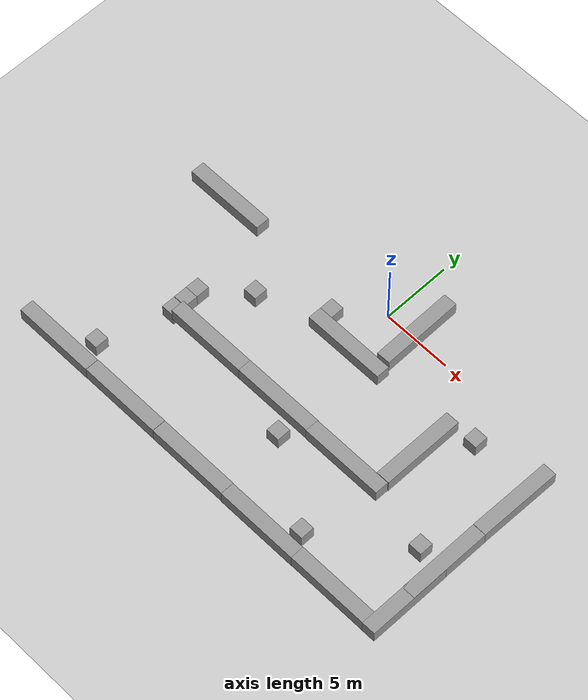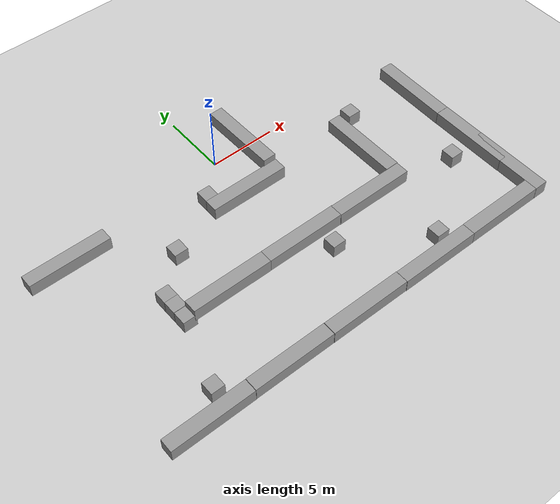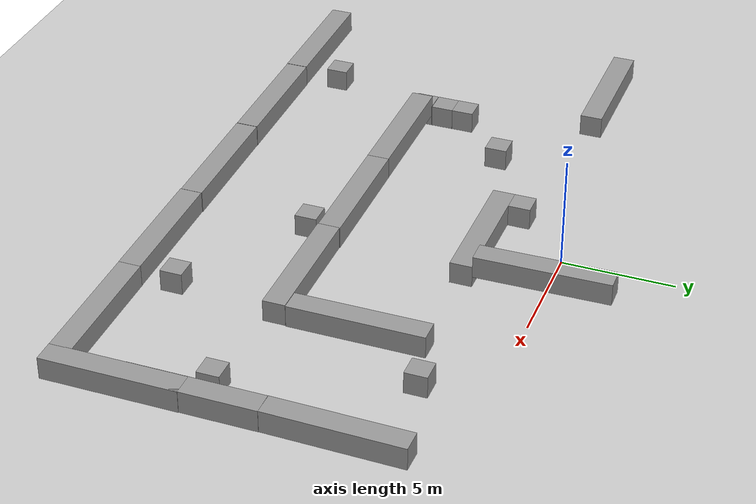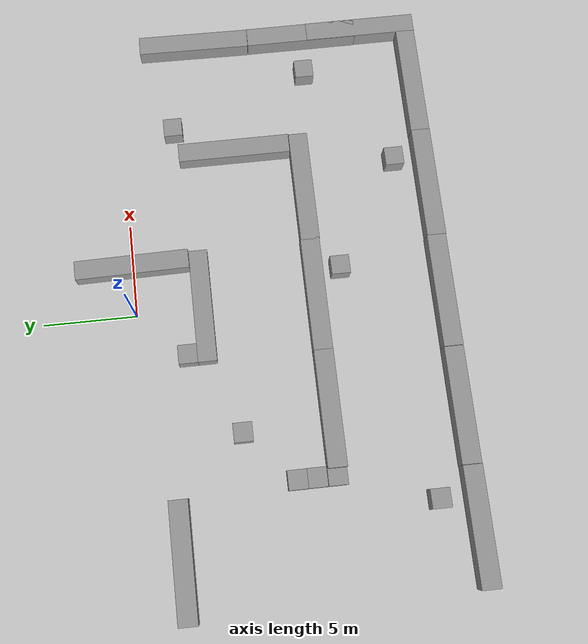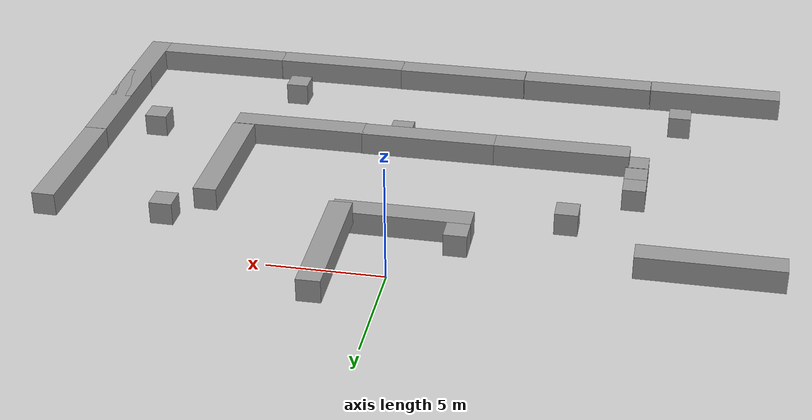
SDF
<sdf version="1.6">
 <world name="default">
  <model name="ground_plane">
   <static>1</static>
   <link name="link">
    <collision name="collision">
     <geometry><plane><normal>0 0 1</normal><size>100 100</size></plane></geometry>
     <surface>
      <contact><collide_bitmask>65535</collide_bitmask></contact>
      <friction><ode><mu>100</mu><mu2>50</mu2></ode></friction>
     </surface>
    </collision>
    <visual name="visual">
     <cast_shadows>0</cast_shadows>
     <geometry><plane><normal>0 0 1</normal><size>100 100</size></plane></geometry>
     <material>
      <script><uri>file://media/materials/scripts/gazebo.material</uri><name>Gazebo/Grey</name></script>
     </material>
    </visual>
   </link>
  </model>
  <model name="long_wall">
   <link name="link">
    <inertial>
     <mass>1</mass>
     <inertia>
      <ixx>0.166667</ixx>
      <ixy>0</ixy>
      <ixz>0</ixz>
      <iyy>0.166667</iyy>
      <iyz>0</iyz>
      <izz>0.166667</izz>
     </inertia>
    </inertial>
    <visual name="visual">
     <geometry><box><size>6 1 1</size></box></geometry>
     <material>
      <script><name>Gazebo/Grey</name><uri>file://media/materials/scripts/gazebo.material</uri></script>
      <shader type="vertex"><normal_map>__default__</normal_map></shader>
      <ambient>0.3 0.3 0.3 1</ambient>
      <diffuse>0.7 0.7 0.7 1</diffuse>
      <specular>0.01 0.01 0.01 1</specular>
      <emissive>0 0 0 1</emissive>
     </material>
    </visual>
    <collision name="collision">
     <geometry><box><size>1 1 1</size></box></geometry>
     <surface>
      <friction>
       <ode><mu>1</mu><mu2>1</mu2><fdir1>0 0 0</fdir1><slip1>0</slip1><slip2>0</slip2></ode>
       <torsional>
        <coefficient>1</coefficient>
        <patch_radius>0</patch_radius>
        <surface_radius>0</surface_radius>
        <use_patch_radius>1</use_patch_radius>
        <ode><slip>0</slip></ode>
       </torsional>
      </friction>
      <bounce><restitution_coefficient>0</restitution_coefficient><threshold>1e+06</threshold></bounce>
      <contact>
       <collide_without_contact>0</collide_without_contact>
       <collide_without_contact_bitmask>1</collide_without_contact_bitmask>
       <collide_bitmask>1</collide_bitmask>
       <ode>
        <soft_cfm>0</soft_cfm>
        <soft_erp>0.2</soft_erp>
        <kp>1e+13</kp>
        <kd>1</kd>
        <max_vel>0.01</max_vel>
        <min_depth>0</min_depth>
       </ode>
       <bullet>
        <split_impulse>1</split_impulse>
        <split_impulse_penetration_threshold>-0.01</split_impulse_penetration_threshold>
        <soft_cfm>0</soft_cfm>
        <soft_erp>0.2</soft_erp>
        <kp>1e+13</kp>
        <kd>1</kd>
       </bullet>
      </contact>
     </surface>
    </collision>
   </link>
   <static>0</static>
   <pose>0.04926 -3.53236 0.499995 0 1e-05 0</pose>
  </model>
  <model name="long_wall_0">
   <link name="link">
    <inertial>
     <mass>1</mass>
     <inertia>
      <ixx>0.166667</ixx>
      <ixy>0</ixy>
      <ixz>0</ixz>
      <iyy>0.166667</iyy>
      <iyz>0</iyz>
      <izz>0.166667</izz>
     </inertia>
    </inertial>
    <visual name="visual">
     <geometry><box><size>6 1 1</size></box></geometry>
     <material>
      <script><name>Gazebo/Grey</name><uri>file://media/materials/scripts/gazebo.material</uri></script>
      <shader type="vertex"><normal_map>__default__</normal_map></shader>
      <ambient>0.3 0.3 0.3 1</ambient>
      <diffuse>0.7 0.7 0.7 1</diffuse>
      <specular>0.01 0.01 0.01 1</specular>
      <emissive>0 0 0 1</emissive>
     </material>
     <pose>0 0 0.5 0 -0 0</pose>
    </visual>
    <collision name="collision">
     <geometry><box><size>1 1 1</size></box></geometry>
     <surface>
      <friction>
       <ode><mu>1</mu><mu2>1</mu2><fdir1>0 0 0</fdir1><slip1>0</slip1><slip2>0</slip2></ode>
       <torsional>
        <coefficient>1</coefficient>
        <patch_radius>0</patch_radius>
        <surface_radius>0</surface_radius>
        <use_patch_radius>1</use_patch_radius>
        <ode><slip>0</slip></ode>
       </torsional>
      </friction>
      <bounce><restitution_coefficient>0</restitution_coefficient><threshold>1e+06</threshold></bounce>
      <contact>
       <collide_without_contact>0</collide_without_contact>
       <collide_without_contact_bitmask>1</collide_without_contact_bitmask>
       <collide_bitmask>1</collide_bitmask>
       <ode>
        <soft_cfm>0</soft_cfm>
        <soft_erp>0.2</soft_erp>
        <kp>1e+13</kp>
        <kd>1</kd>
        <max_vel>0.01</max_vel>
        <min_depth>0</min_depth>
       </ode>
       <bullet>
        <split_impulse>1</split_impulse>
        <split_impulse_penetration_threshold>-0.01</split_impulse_penetration_threshold>
        <soft_cfm>0</soft_cfm>
        <soft_erp>0.2</soft_erp>
        <kp>1e+13</kp>
        <kd>1</kd>
       </bullet>
      </contact>
     </surface>
    </collision>
   </link>
   <static>0</static>
   <pose>2.49568 -0.041218 0.5 0 0 -1.55477</pose>
  </model>
  <model name="unit_box">
   <pose>-2.45124 -2.53302 0.499995 0 1e-05 0</pose>
   <link name="link">
    <inertial>
     <mass>1</mass>
     <inertia>
      <ixx>0.166667</ixx>
      <ixy>0</ixy>
      <ixz>0</ixz>
      <iyy>0.166667</iyy>
      <iyz>0</iyz>
      <izz>0.166667</izz>
     </inertia>
    </inertial>
    <collision name="collision"><geometry><box><size>1 1 1</size></box></geometry></collision>
    <visual name="visual">
     <geometry><box><size>1 1 1</size></box></geometry>
     <material>
      <script><name>Gazebo/Grey</name><uri>file://media/materials/scripts/gazebo.material</uri></script>
     </material>
    </visual>
   </link>
  </model>
  <model name="long_wall_0_1">
   <link name="link">
    <inertial>
     <mass>1</mass>
     <inertia>
      <ixx>0.166667</ixx>
      <ixy>0</ixy>
      <ixz>0</ixz>
      <iyy>0.166667</iyy>
      <iyz>0</iyz>
      <izz>0.166667</izz>
     </inertia>
    </inertial>
    <visual name="visual">
     <geometry><box><size>6 1 1</size></box></geometry>
     <material>
      <script><name>Gazebo/Grey</name><uri>file://media/materials/scripts/gazebo.material</uri></script>
      <shader type="vertex"><normal_map>__default__</normal_map></shader>
      <ambient>0.3 0.3 0.3 1</ambient>
      <diffuse>0.7 0.7 0.7 1</diffuse>
      <specular>0.01 0.01 0.01 1</specular>
      <emissive>0 0 0 1</emissive>
     </material>
     <pose>0 0 0.5 0 -0 0</pose>
    </visual>
    <collision name="collision">
     <geometry><box><size>1 1 1</size></box></geometry>
     <surface>
      <friction>
       <ode><mu>1</mu><mu2>1</mu2><fdir1>0 0 0</fdir1><slip1>0</slip1><slip2>0</slip2></ode>
       <torsional>
        <coefficient>1</coefficient>
        <patch_radius>0</patch_radius>
        <surface_radius>0</surface_radius>
        <use_patch_radius>1</use_patch_radius>
        <ode><slip>0</slip></ode>
       </torsional>
      </friction>
      <bounce><restitution_coefficient>0</restitution_coefficient><threshold>1e+06</threshold></bounce>
      <contact>
       <collide_without_contact>0</collide_without_contact>
       <collide_without_contact_bitmask>1</collide_without_contact_bitmask>
       <collide_bitmask>1</collide_bitmask>
       <ode>
        <soft_cfm>0</soft_cfm>
        <soft_erp>0.2</soft_erp>
        <kp>1e+13</kp>
        <kd>1</kd>
        <max_vel>0.01</max_vel>
        <min_depth>0</min_depth>
       </ode>
       <bullet>
        <split_impulse>1</split_impulse>
        <split_impulse_penetration_threshold>-0.01</split_impulse_penetration_threshold>
        <soft_cfm>0</soft_cfm>
        <soft_erp>0.2</soft_erp>
        <kp>1e+13</kp>
        <kd>1</kd>
       </bullet>
      </contact>
     </surface>
    </collision>
   </link>
   <static>0</static>
   <pose>-0.009202 -9.5091 0.5 0 -0 0</pose>
  </model>
  <model name="long_wall_0_3">
   <link name="link">
    <inertial>
     <mass>1</mass>
     <inertia>
      <ixx>0.166667</ixx>
      <ixy>0</ixy>
      <ixz>0</ixz>
      <iyy>0.166667</iyy>
      <iyz>0</iyz>
      <izz>0.166667</izz>
     </inertia>
    </inertial>
    <visual name="visual">
     <geometry><box><size>6 1 1</size></box></geometry>
     <material>
      <script><name>Gazebo/Grey</name><uri>file://media/materials/scripts/gazebo.material</uri></script>
      <shader type="vertex"><normal_map>__default__</normal_map></shader>
      <ambient>0.3 0.3 0.3 1</ambient>
      <diffuse>0.7 0.7 0.7 1</diffuse>
      <specular>0.01 0.01 0.01 1</specular>
      <emissive>0 0 0 1</emissive>
     </material>
     <pose>0 0 0.5 0 -0 0</pose>
    </visual>
    <collision name="collision">
     <geometry><box><size>1 1 1</size></box></geometry>
     <surface>
      <friction>
       <ode><mu>1</mu><mu2>1</mu2><fdir1>0 0 0</fdir1><slip1>0</slip1><slip2>0</slip2></ode>
       <torsional>
        <coefficient>1</coefficient>
        <patch_radius>0</patch_radius>
        <surface_radius>0</surface_radius>
        <use_patch_radius>1</use_patch_radius>
        <ode><slip>0</slip></ode>
       </torsional>
      </friction>
      <bounce><restitution_coefficient>0</restitution_coefficient><threshold>1e+06</threshold></bounce>
      <contact>
       <collide_without_contact>0</collide_without_contact>
       <collide_without_contact_bitmask>1</collide_without_contact_bitmask>
       <collide_bitmask>1</collide_bitmask>
       <ode>
        <soft_cfm>0</soft_cfm>
        <soft_erp>0.2</soft_erp>
        <kp>1e+13</kp>
        <kd>1</kd>
        <max_vel>0.01</max_vel>
        <min_depth>0</min_depth>
       </ode>
       <bullet>
        <split_impulse>1</split_impulse>
        <split_impulse_penetration_threshold>-0.01</split_impulse_penetration_threshold>
        <soft_cfm>0</soft_cfm>
        <soft_erp>0.2</soft_erp>
        <kp>1e+13</kp>
        <kd>1</kd>
       </bullet>
      </contact>
     </surface>
    </collision>
   </link>
   <static>0</static>
   <pose>5.92003 -9.53571 0.5 0 -0 0</pose>
  </model>
  <model name="long_wall_0_5">
   <link name="link">
    <inertial>
     <mass>1</mass>
     <inertia>
      <ixx>0.166667</ixx>
      <ixy>0</ixy>
      <ixz>0</ixz>
      <iyy>0.166667</iyy>
      <iyz>0</iyz>
      <izz>0.166667</izz>
     </inertia>
    </inertial>
    <visual name="visual">
     <geometry><box><size>6 1 1</size></box></geometry>
     <material>
      <script><name>Gazebo/Grey</name><uri>file://media/materials/scripts/gazebo.material</uri></script>
      <shader type="vertex"><normal_map>__default__</normal_map></shader>
      <ambient>0.3 0.3 0.3 1</ambient>
      <diffuse>0.7 0.7 0.7 1</diffuse>
      <specular>0.01 0.01 0.01 1</specular>
      <emissive>0 0 0 1</emissive>
     </material>
     <pose>0 0 0.5 0 -0 0</pose>
    </visual>
    <collision name="collision">
     <geometry><box><size>1 1 1</size></box></geometry>
     <surface>
      <friction>
       <ode><mu>1</mu><mu2>1</mu2><fdir1>0 0 0</fdir1><slip1>0</slip1><slip2>0</slip2></ode>
       <torsional>
        <coefficient>1</coefficient>
        <patch_radius>0</patch_radius>
        <surface_radius>0</surface_radius>
        <use_patch_radius>1</use_patch_radius>
        <ode><slip>0</slip></ode>
       </torsional>
      </friction>
      <bounce><restitution_coefficient>0</restitution_coefficient><threshold>1e+06</threshold></bounce>
      <contact>
       <collide_without_contact>0</collide_without_contact>
       <collide_without_contact_bitmask>1</collide_without_contact_bitmask>
       <collide_bitmask>1</collide_bitmask>
       <ode>
        <soft_cfm>0</soft_cfm>
        <soft_erp>0.2</soft_erp>
        <kp>1e+13</kp>
        <kd>1</kd>
        <max_vel>0.01</max_vel>
        <min_depth>0</min_depth>
       </ode>
       <bullet>
        <split_impulse>1</split_impulse>
        <split_impulse_penetration_threshold>-0.01</split_impulse_penetration_threshold>
        <soft_cfm>0</soft_cfm>
        <soft_erp>0.2</soft_erp>
        <kp>1e+13</kp>
        <kd>1</kd>
       </bullet>
      </contact>
     </surface>
    </collision>
   </link>
   <static>0</static>
   <pose>8.45903 -6.01437 0.5 0 -0 1.5708</pose>
  </model>
  <model name="long_wall_0_8">
   <link name="link">
    <inertial>
     <mass>1</mass>
     <inertia>
      <ixx>0.166667</ixx>
      <ixy>0</ixy>
      <ixz>0</ixz>
      <iyy>0.166667</iyy>
      <iyz>0</iyz>
      <izz>0.166667</izz>
     </inertia>
    </inertial>
    <visual name="visual">
     <geometry><box><size>6 1 1</size></box></geometry>
     <material>
      <script><name>Gazebo/Grey</name><uri>file://media/materials/scripts/gazebo.material</uri></script>
      <shader type="vertex"><normal_map>__default__</normal_map></shader>
      <ambient>0.3 0.3 0.3 1</ambient>
      <diffuse>0.7 0.7 0.7 1</diffuse>
      <specular>0.01 0.01 0.01 1</specular>
      <emissive>0 0 0 1</emissive>
     </material>
     <pose>0 0 0.5 0 -0 0</pose>
    </visual>
    <collision name="collision">
     <geometry><box><size>1 1 1</size></box></geometry>
     <surface>
      <friction>
       <ode><mu>1</mu><mu2>1</mu2><fdir1>0 0 0</fdir1><slip1>0</slip1><slip2>0</slip2></ode>
       <torsional>
        <coefficient>1</coefficient>
        <patch_radius>0</patch_radius>
        <surface_radius>0</surface_radius>
        <use_patch_radius>1</use_patch_radius>
        <ode><slip>0</slip></ode>
       </torsional>
      </friction>
      <bounce><restitution_coefficient>0</restitution_coefficient><threshold>1e+06</threshold></bounce>
      <contact>
       <collide_without_contact>0</collide_without_contact>
       <collide_without_contact_bitmask>1</collide_without_contact_bitmask>
       <collide_bitmask>1</collide_bitmask>
       <ode>
        <soft_cfm>0</soft_cfm>
        <soft_erp>0.2</soft_erp>
        <kp>1e+13</kp>
        <kd>1</kd>
        <max_vel>0.01</max_vel>
        <min_depth>0</min_depth>
       </ode>
       <bullet>
        <split_impulse>1</split_impulse>
        <split_impulse_penetration_threshold>-0.01</split_impulse_penetration_threshold>
        <soft_cfm>0</soft_cfm>
        <soft_erp>0.2</soft_erp>
        <kp>1e+13</kp>
        <kd>1</kd>
       </bullet>
      </contact>
     </surface>
    </collision>
   </link>
   <static>0</static>
   <pose>-6.007 -9.51284 0.5 0 -0 0</pose>
  </model>
  <model name="unit_box_4">
   <pose>-9.37003 -9.50695 0.499995 0 1e-05 0</pose>
   <link name="link">
    <inertial>
     <mass>1</mass>
     <inertia>
      <ixx>0.166667</ixx>
      <ixy>0</ixy>
      <ixz>0</ixz>
      <iyy>0.166667</iyy>
      <iyz>0</iyz>
      <izz>0.166667</izz>
     </inertia>
    </inertial>
    <collision name="collision"><geometry><box><size>1 1 1</size></box></geometry></collision>
    <visual name="visual">
     <geometry><box><size>1 1 1</size></box></geometry>
     <material>
      <script><name>Gazebo/Grey</name><uri>file://media/materials/scripts/gazebo.material</uri></script>
     </material>
    </visual>
   </link>
  </model>
  <model name="unit_box_5">
   <pose>-9.37382 -8.48635 0.499995 -1e-05 -0 1.3e-05</pose>
   <link name="link">
    <inertial>
     <mass>1</mass>
     <inertia>
      <ixx>0.166667</ixx>
      <ixy>0</ixy>
      <ixz>0</ixz>
      <iyy>0.166667</iyy>
      <iyz>0</iyz>
      <izz>0.166667</izz>
     </inertia>
    </inertial>
    <collision name="collision"><geometry><box><size>1 1 1</size></box></geometry></collision>
    <visual name="visual">
     <geometry><box><size>1 1 1</size></box></geometry>
     <material>
      <script><name>Gazebo/Grey</name><uri>file://media/materials/scripts/gazebo.material</uri></script>
     </material>
    </visual>
   </link>
  </model>
  <model name="unit_box_6">
   <pose>-9.3806 -7.48635 0.499995 1e-05 -0 1.7e-05</pose>
   <link name="link">
    <inertial>
     <mass>1</mass>
     <inertia>
      <ixx>0.166667</ixx>
      <ixy>0</ixy>
      <ixz>0</ixz>
      <iyy>0.166667</iyy>
      <iyz>0</iyz>
      <izz>0.166667</izz>
     </inertia>
    </inertial>
    <collision name="collision"><geometry><box><size>1 1 1</size></box></geometry></collision>
    <visual name="visual">
     <geometry><box><size>1 1 1</size></box></geometry>
     <material>
      <script><name>Gazebo/Grey</name><uri>file://media/materials/scripts/gazebo.material</uri></script>
     </material>
    </visual>
   </link>
  </model>
  <model name="long_wall_0_11">
   <link name="link">
    <inertial>
     <mass>1</mass>
     <inertia>
      <ixx>0.166667</ixx>
      <ixy>0</ixy>
      <ixz>0</ixz>
      <iyy>0.166667</iyy>
      <iyz>0</iyz>
      <izz>0.166667</izz>
     </inertia>
    </inertial>
    <visual name="visual">
     <geometry><box><size>6 1 1</size></box></geometry>
     <material>
      <script><name>Gazebo/Grey</name><uri>file://media/materials/scripts/gazebo.material</uri></script>
      <shader type="vertex"><normal_map>__default__</normal_map></shader>
      <ambient>0.3 0.3 0.3 1</ambient>
      <diffuse>0.7 0.7 0.7 1</diffuse>
      <specular>0.01 0.01 0.01 1</specular>
      <emissive>0 0 0 1</emissive>
     </material>
     <pose>0 0 0.5 0 -0 0</pose>
    </visual>
    <collision name="collision">
     <geometry><box><size>1 1 1</size></box></geometry>
     <surface>
      <friction>
       <ode><mu>1</mu><mu2>1</mu2><fdir1>0 0 0</fdir1><slip1>0</slip1><slip2>0</slip2></ode>
       <torsional>
        <coefficient>1</coefficient>
        <patch_radius>0</patch_radius>
        <surface_radius>0</surface_radius>
        <use_patch_radius>1</use_patch_radius>
        <ode><slip>0</slip></ode>
       </torsional>
      </friction>
      <bounce><restitution_coefficient>0</restitution_coefficient><threshold>1e+06</threshold></bounce>
      <contact>
       <collide_without_contact>0</collide_without_contact>
       <collide_without_contact_bitmask>1</collide_without_contact_bitmask>
       <collide_bitmask>1</collide_bitmask>
       <ode>
        <soft_cfm>0</soft_cfm>
        <soft_erp>0.2</soft_erp>
        <kp>1e+13</kp>
        <kd>1</kd>
        <max_vel>0.01</max_vel>
        <min_depth>0</min_depth>
       </ode>
       <bullet>
        <split_impulse>1</split_impulse>
        <split_impulse_penetration_threshold>-0.01</split_impulse_penetration_threshold>
        <soft_cfm>0</soft_cfm>
        <soft_erp>0.2</soft_erp>
        <kp>1e+13</kp>
        <kd>1</kd>
       </bullet>
      </contact>
     </surface>
    </collision>
   </link>
   <static>0</static>
   <pose>-12.7536 -1.45734 0.5 0 -0 0</pose>
  </model>
  <model name="long_wall_0_32">
   <link name="link">
    <inertial>
     <mass>1</mass>
     <inertia>
      <ixx>0.166667</ixx>
      <ixy>0</ixy>
      <ixz>0</ixz>
      <iyy>0.166667</iyy>
      <iyz>0</iyz>
      <izz>0.166667</izz>
     </inertia>
    </inertial>
    <visual name="visual">
     <geometry><box><size>6 1 1</size></box></geometry>
     <material>
      <script><name>Gazebo/Grey</name><uri>file://media/materials/scripts/gazebo.material</uri></script>
      <shader type="vertex"><normal_map>__default__</normal_map></shader>
      <ambient>0.3 0.3 0.3 1</ambient>
      <diffuse>0.7 0.7 0.7 1</diffuse>
      <specular>0.01 0.01 0.01 1</specular>
      <emissive>0 0 0 1</emissive>
     </material>
     <pose>0 0 0.5 0 -0 0</pose>
    </visual>
    <collision name="collision">
     <geometry><box><size>1 1 1</size></box></geometry>
     <surface>
      <friction>
       <ode><mu>1</mu><mu2>1</mu2><fdir1>0 0 0</fdir1><slip1>0</slip1><slip2>0</slip2></ode>
       <torsional>
        <coefficient>1</coefficient>
        <patch_radius>0</patch_radius>
        <surface_radius>0</surface_radius>
        <use_patch_radius>1</use_patch_radius>
        <ode><slip>0</slip></ode>
       </torsional>
      </friction>
      <bounce><restitution_coefficient>0</restitution_coefficient><threshold>1e+06</threshold></bounce>
      <contact>
       <collide_without_contact>0</collide_without_contact>
       <collide_without_contact_bitmask>1</collide_without_contact_bitmask>
       <collide_bitmask>1</collide_bitmask>
       <ode>
        <soft_cfm>0</soft_cfm>
        <soft_erp>0.2</soft_erp>
        <kp>1e+13</kp>
        <kd>1</kd>
        <max_vel>0.01</max_vel>
        <min_depth>0</min_depth>
       </ode>
       <bullet>
        <split_impulse>1</split_impulse>
        <split_impulse_penetration_threshold>-0.01</split_impulse_penetration_threshold>
        <soft_cfm>0</soft_cfm>
        <soft_erp>0.2</soft_erp>
        <kp>1e+13</kp>
        <kd>1</kd>
       </bullet>
      </contact>
     </surface>
    </collision>
   </link>
   <static>0</static>
   <pose>14.9749 -4.38641 0.5 0 0 -1.58517</pose>
  </model>
  <model name="long_wall_0_33">
   <link name="link">
    <inertial>
     <mass>1</mass>
     <inertia>
      <ixx>0.166667</ixx>
      <ixy>0</ixy>
      <ixz>0</ixz>
      <iyy>0.166667</iyy>
      <iyz>0</iyz>
      <izz>0.166667</izz>
     </inertia>
    </inertial>
    <visual name="visual">
     <geometry><box><size>6 1 1</size></box></geometry>
     <material>
      <script><name>Gazebo/Grey</name><uri>file://media/materials/scripts/gazebo.material</uri></script>
      <shader type="vertex"><normal_map>__default__</normal_map></shader>
      <ambient>0.3 0.3 0.3 1</ambient>
      <diffuse>0.7 0.7 0.7 1</diffuse>
      <specular>0.01 0.01 0.01 1</specular>
      <emissive>0 0 0 1</emissive>
     </material>
     <pose>0 0 0.5 0 -0 0</pose>
    </visual>
    <collision name="collision">
     <geometry><box><size>1 1 1</size></box></geometry>
     <surface>
      <friction>
       <ode><mu>1</mu><mu2>1</mu2><fdir1>0 0 0</fdir1><slip1>0</slip1><slip2>0</slip2></ode>
       <torsional>
        <coefficient>1</coefficient>
        <patch_radius>0</patch_radius>
        <surface_radius>0</surface_radius>
        <use_patch_radius>1</use_patch_radius>
        <ode><slip>0</slip></ode>
       </torsional>
      </friction>
      <bounce><restitution_coefficient>0</restitution_coefficient><threshold>1e+06</threshold></bounce>
      <contact>
       <collide_without_contact>0</collide_without_contact>
       <collide_without_contact_bitmask>1</collide_without_contact_bitmask>
       <collide_bitmask>1</collide_bitmask>
       <ode>
        <soft_cfm>0</soft_cfm>
        <soft_erp>0.2</soft_erp>
        <kp>1e+13</kp>
        <kd>1</kd>
        <max_vel>0.01</max_vel>
        <min_depth>0</min_depth>
       </ode>
       <bullet>
        <split_impulse>1</split_impulse>
        <split_impulse_penetration_threshold>-0.01</split_impulse_penetration_threshold>
        <soft_cfm>0</soft_cfm>
        <soft_erp>0.2</soft_erp>
        <kp>1e+13</kp>
        <kd>1</kd>
       </bullet>
      </contact>
     </surface>
    </collision>
   </link>
   <static>0</static>
   <pose>14.9419 -10.3915 0.5 0 0 -1.5708</pose>
  </model>
  <model name="long_wall_0_34">
   <link name="link">
    <inertial>
     <mass>1</mass>
     <inertia>
      <ixx>0.166667</ixx>
      <ixy>0</ixy>
      <ixz>0</ixz>
      <iyy>0.166667</iyy>
      <iyz>0</iyz>
      <izz>0.166667</izz>
     </inertia>
    </inertial>
    <visual name="visual">
     <geometry><box><size>6 1 1</size></box></geometry>
     <material>
      <script><name>Gazebo/Grey</name><uri>file://media/materials/scripts/gazebo.material</uri></script>
      <shader type="vertex"><normal_map>__default__</normal_map></shader>
      <ambient>0.3 0.3 0.3 1</ambient>
      <diffuse>0.7 0.7 0.7 1</diffuse>
      <specular>0.01 0.01 0.01 1</specular>
      <emissive>0 0 0 1</emissive>
     </material>
     <pose>0 0 0.5 0 -0 0</pose>
    </visual>
    <collision name="collision">
     <geometry><box><size>1 1 1</size></box></geometry>
     <surface>
      <friction>
       <ode><mu>1</mu><mu2>1</mu2><fdir1>0 0 0</fdir1><slip1>0</slip1><slip2>0</slip2></ode>
       <torsional>
        <coefficient>1</coefficient>
        <patch_radius>0</patch_radius>
        <surface_radius>0</surface_radius>
        <use_patch_radius>1</use_patch_radius>
        <ode><slip>0</slip></ode>
       </torsional>
      </friction>
      <bounce><restitution_coefficient>0</restitution_coefficient><threshold>1e+06</threshold></bounce>
      <contact>
       <collide_without_contact>0</collide_without_contact>
       <collide_without_contact_bitmask>1</collide_without_contact_bitmask>
       <collide_bitmask>1</collide_bitmask>
       <ode>
        <soft_cfm>0</soft_cfm>
        <soft_erp>0.2</soft_erp>
        <kp>1e+13</kp>
        <kd>1</kd>
        <max_vel>0.01</max_vel>
        <min_depth>0</min_depth>
       </ode>
       <bullet>
        <split_impulse>1</split_impulse>
        <split_impulse_penetration_threshold>-0.01</split_impulse_penetration_threshold>
        <soft_cfm>0</soft_cfm>
        <soft_erp>0.2</soft_erp>
        <kp>1e+13</kp>
        <kd>1</kd>
       </bullet>
      </contact>
     </surface>
    </collision>
   </link>
   <static>0</static>
   <pose>14.9563 -13.7127 0.5 0 0 -1.5708</pose>
  </model>
  <model name="long_wall_0_35">
   <link name="link">
    <inertial>
     <mass>1</mass>
     <inertia>
      <ixx>0.166667</ixx>
      <ixy>0</ixy>
      <ixz>0</ixz>
      <iyy>0.166667</iyy>
      <iyz>0</iyz>
      <izz>0.166667</izz>
     </inertia>
    </inertial>
    <visual name="visual">
     <geometry><box><size>6 1 1</size></box></geometry>
     <material>
      <script><name>Gazebo/Grey</name><uri>file://media/materials/scripts/gazebo.material</uri></script>
      <shader type="vertex"><normal_map>__default__</normal_map></shader>
      <ambient>0.3 0.3 0.3 1</ambient>
      <diffuse>0.7 0.7 0.7 1</diffuse>
      <specular>0.01 0.01 0.01 1</specular>
      <emissive>0 0 0 1</emissive>
     </material>
     <pose>0 0 0.5 0 -0 0</pose>
    </visual>
    <collision name="collision">
     <geometry><box><size>1 1 1</size></box></geometry>
     <surface>
      <friction>
       <ode><mu>1</mu><mu2>1</mu2><fdir1>0 0 0</fdir1><slip1>0</slip1><slip2>0</slip2></ode>
       <torsional>
        <coefficient>1</coefficient>
        <patch_radius>0</patch_radius>
        <surface_radius>0</surface_radius>
        <use_patch_radius>1</use_patch_radius>
        <ode><slip>0</slip></ode>
       </torsional>
      </friction>
      <bounce><restitution_coefficient>0</restitution_coefficient><threshold>1e+06</threshold></bounce>
      <contact>
       <collide_without_contact>0</collide_without_contact>
       <collide_without_contact_bitmask>1</collide_without_contact_bitmask>
       <collide_bitmask>1</collide_bitmask>
       <ode>
        <soft_cfm>0</soft_cfm>
        <soft_erp>0.2</soft_erp>
        <kp>1e+13</kp>
        <kd>1</kd>
        <max_vel>0.01</max_vel>
        <min_depth>0</min_depth>
       </ode>
       <bullet>
        <split_impulse>1</split_impulse>
        <split_impulse_penetration_threshold>-0.01</split_impulse_penetration_threshold>
        <soft_cfm>0</soft_cfm>
        <soft_erp>0.2</soft_erp>
        <kp>1e+13</kp>
        <kd>1</kd>
       </bullet>
      </contact>
     </surface>
    </collision>
   </link>
   <static>0</static>
   <pose>11.4761 -16.2064 0.5 0 -0 0</pose>
  </model>
  <model name="long_wall_0_36">
   <link name="link">
    <inertial>
     <mass>1</mass>
     <inertia>
      <ixx>0.166667</ixx>
      <ixy>0</ixy>
      <ixz>0</ixz>
      <iyy>0.166667</iyy>
      <iyz>0</iyz>
      <izz>0.166667</izz>
     </inertia>
    </inertial>
    <visual name="visual">
     <geometry><box><size>6 1 1</size></box></geometry>
     <material>
      <script><name>Gazebo/Grey</name><uri>file://media/materials/scripts/gazebo.material</uri></script>
      <shader type="vertex"><normal_map>__default__</normal_map></shader>
      <ambient>0.3 0.3 0.3 1</ambient>
      <diffuse>0.7 0.7 0.7 1</diffuse>
      <specular>0.01 0.01 0.01 1</specular>
      <emissive>0 0 0 1</emissive>
     </material>
     <pose>0 0 0.5 0 -0 0</pose>
    </visual>
    <collision name="collision">
     <geometry><box><size>1 1 1</size></box></geometry>
     <surface>
      <friction>
       <ode><mu>1</mu><mu2>1</mu2><fdir1>0 0 0</fdir1><slip1>0</slip1><slip2>0</slip2></ode>
       <torsional>
        <coefficient>1</coefficient>
        <patch_radius>0</patch_radius>
        <surface_radius>0</surface_radius>
        <use_patch_radius>1</use_patch_radius>
        <ode><slip>0</slip></ode>
       </torsional>
      </friction>
      <bounce><restitution_coefficient>0</restitution_coefficient><threshold>1e+06</threshold></bounce>
      <contact>
       <collide_without_contact>0</collide_without_contact>
       <collide_without_contact_bitmask>1</collide_without_contact_bitmask>
       <collide_bitmask>1</collide_bitmask>
       <ode>
        <soft_cfm>0</soft_cfm>
        <soft_erp>0.2</soft_erp>
        <kp>1e+13</kp>
        <kd>1</kd>
        <max_vel>0.01</max_vel>
        <min_depth>0</min_depth>
       </ode>
       <bullet>
        <split_impulse>1</split_impulse>
        <split_impulse_penetration_threshold>-0.01</split_impulse_penetration_threshold>
        <soft_cfm>0</soft_cfm>
        <soft_erp>0.2</soft_erp>
        <kp>1e+13</kp>
        <kd>1</kd>
       </bullet>
      </contact>
     </surface>
    </collision>
   </link>
   <static>0</static>
   <pose>5.50345 -16.2157 0.5 0 -0 0</pose>
  </model>
  <model name="long_wall_0_37">
   <link name="link">
    <inertial>
     <mass>1</mass>
     <inertia>
      <ixx>0.166667</ixx>
      <ixy>0</ixy>
      <ixz>0</ixz>
      <iyy>0.166667</iyy>
      <iyz>0</iyz>
      <izz>0.166667</izz>
     </inertia>
    </inertial>
    <visual name="visual">
     <geometry><box><size>6 1 1</size></box></geometry>
     <material>
      <script><name>Gazebo/Grey</name><uri>file://media/materials/scripts/gazebo.material</uri></script>
      <shader type="vertex"><normal_map>__default__</normal_map></shader>
      <ambient>0.3 0.3 0.3 1</ambient>
      <diffuse>0.7 0.7 0.7 1</diffuse>
      <specular>0.01 0.01 0.01 1</specular>
      <emissive>0 0 0 1</emissive>
     </material>
     <pose>0 0 0.5 0 -0 0</pose>
    </visual>
    <collision name="collision">
     <geometry><box><size>1 1 1</size></box></geometry>
     <surface>
      <friction>
       <ode><mu>1</mu><mu2>1</mu2><fdir1>0 0 0</fdir1><slip1>0</slip1><slip2>0</slip2></ode>
       <torsional>
        <coefficient>1</coefficient>
        <patch_radius>0</patch_radius>
        <surface_radius>0</surface_radius>
        <use_patch_radius>1</use_patch_radius>
        <ode><slip>0</slip></ode>
       </torsional>
      </friction>
      <bounce><restitution_coefficient>0</restitution_coefficient><threshold>1e+06</threshold></bounce>
      <contact>
       <collide_without_contact>0</collide_without_contact>
       <collide_without_contact_bitmask>1</collide_without_contact_bitmask>
       <collide_bitmask>1</collide_bitmask>
       <ode>
        <soft_cfm>0</soft_cfm>
        <soft_erp>0.2</soft_erp>
        <kp>1e+13</kp>
        <kd>1</kd>
        <max_vel>0.01</max_vel>
        <min_depth>0</min_depth>
       </ode>
       <bullet>
        <split_impulse>1</split_impulse>
        <split_impulse_penetration_threshold>-0.01</split_impulse_penetration_threshold>
        <soft_cfm>0</soft_cfm>
        <soft_erp>0.2</soft_erp>
        <kp>1e+13</kp>
        <kd>1</kd>
       </bullet>
      </contact>
     </surface>
    </collision>
   </link>
   <static>0</static>
   <pose>-0.499905 -16.193 0.5 0 -0 0</pose>
  </model>
  <model name="long_wall_0_38">
   <link name="link">
    <inertial>
     <mass>1</mass>
     <inertia>
      <ixx>0.166667</ixx>
      <ixy>0</ixy>
      <ixz>0</ixz>
      <iyy>0.166667</iyy>
      <iyz>0</iyz>
      <izz>0.166667</izz>
     </inertia>
    </inertial>
    <visual name="visual">
     <geometry><box><size>6 1 1</size></box></geometry>
     <material>
      <script><name>Gazebo/Grey</name><uri>file://media/materials/scripts/gazebo.material</uri></script>
      <shader type="vertex"><normal_map>__default__</normal_map></shader>
      <ambient>0.3 0.3 0.3 1</ambient>
      <diffuse>0.7 0.7 0.7 1</diffuse>
      <specular>0.01 0.01 0.01 1</specular>
      <emissive>0 0 0 1</emissive>
     </material>
     <pose>0 0 0.5 0 -0 0</pose>
    </visual>
    <collision name="collision">
     <geometry><box><size>1 1 1</size></box></geometry>
     <surface>
      <friction>
       <ode><mu>1</mu><mu2>1</mu2><fdir1>0 0 0</fdir1><slip1>0</slip1><slip2>0</slip2></ode>
       <torsional>
        <coefficient>1</coefficient>
        <patch_radius>0</patch_radius>
        <surface_radius>0</surface_radius>
        <use_patch_radius>1</use_patch_radius>
        <ode><slip>0</slip></ode>
       </torsional>
      </friction>
      <bounce><restitution_coefficient>0</restitution_coefficient><threshold>1e+06</threshold></bounce>
      <contact>
       <collide_without_contact>0</collide_without_contact>
       <collide_without_contact_bitmask>1</collide_without_contact_bitmask>
       <collide_bitmask>1</collide_bitmask>
       <ode>
        <soft_cfm>0</soft_cfm>
        <soft_erp>0.2</soft_erp>
        <kp>1e+13</kp>
        <kd>1</kd>
        <max_vel>0.01</max_vel>
        <min_depth>0</min_depth>
       </ode>
       <bullet>
        <split_impulse>1</split_impulse>
        <split_impulse_penetration_threshold>-0.01</split_impulse_penetration_threshold>
        <soft_cfm>0</soft_cfm>
        <soft_erp>0.2</soft_erp>
        <kp>1e+13</kp>
        <kd>1</kd>
       </bullet>
      </contact>
     </surface>
    </collision>
   </link>
   <static>0</static>
   <pose>-6.52102 -16.185 0.5 0 -0 0</pose>
  </model>
  <model name="long_wall_0_39">
   <link name="link">
    <inertial>
     <mass>1</mass>
     <inertia>
      <ixx>0.166667</ixx>
      <ixy>0</ixy>
      <ixz>0</ixz>
      <iyy>0.166667</iyy>
      <iyz>0</iyz>
      <izz>0.166667</izz>
     </inertia>
    </inertial>
    <visual name="visual">
     <geometry><box><size>6 1 1</size></box></geometry>
     <material>
      <script><name>Gazebo/Grey</name><uri>file://media/materials/scripts/gazebo.material</uri></script>
      <shader type="vertex"><normal_map>__default__</normal_map></shader>
      <ambient>0.3 0.3 0.3 1</ambient>
      <diffuse>0.7 0.7 0.7 1</diffuse>
      <specular>0.01 0.01 0.01 1</specular>
      <emissive>0 0 0 1</emissive>
     </material>
     <pose>0 0 0.5 0 -0 0</pose>
    </visual>
    <collision name="collision">
     <geometry><box><size>1 1 1</size></box></geometry>
     <surface>
      <friction>
       <ode><mu>1</mu><mu2>1</mu2><fdir1>0 0 0</fdir1><slip1>0</slip1><slip2>0</slip2></ode>
       <torsional>
        <coefficient>1</coefficient>
        <patch_radius>0</patch_radius>
        <surface_radius>0</surface_radius>
        <use_patch_radius>1</use_patch_radius>
        <ode><slip>0</slip></ode>
       </torsional>
      </friction>
      <bounce><restitution_coefficient>0</restitution_coefficient><threshold>1e+06</threshold></bounce>
      <contact>
       <collide_without_contact>0</collide_without_contact>
       <collide_without_contact_bitmask>1</collide_without_contact_bitmask>
       <collide_bitmask>1</collide_bitmask>
       <ode>
        <soft_cfm>0</soft_cfm>
        <soft_erp>0.2</soft_erp>
        <kp>1e+13</kp>
        <kd>1</kd>
        <max_vel>0.01</max_vel>
        <min_depth>0</min_depth>
       </ode>
       <bullet>
        <split_impulse>1</split_impulse>
        <split_impulse_penetration_threshold>-0.01</split_impulse_penetration_threshold>
        <soft_cfm>0</soft_cfm>
        <soft_erp>0.2</soft_erp>
        <kp>1e+13</kp>
        <kd>1</kd>
       </bullet>
      </contact>
     </surface>
    </collision>
   </link>
   <static>0</static>
   <pose>-12.5416 -16.1996 0.5 0 -0 0</pose>
  </model>
  <model name="unit_box_14">
   <pose>-6.74409 -4.98799 0.499995 0 1e-05 0</pose>
   <link name="link">
    <inertial>
     <mass>1</mass>
     <inertia>
      <ixx>0.166667</ixx>
      <ixy>0</ixy>
      <ixz>0</ixz>
      <iyy>0.166667</iyy>
      <iyz>0</iyz>
      <izz>0.166667</izz>
     </inertia>
    </inertial>
    <collision name="collision"><geometry><box><size>1 1 1</size></box></geometry></collision>
    <visual name="visual">
     <geometry><box><size>1 1 1</size></box></geometry>
     <material>
      <script><name>Gazebo/Grey</name><uri>file://media/materials/scripts/gazebo.material</uri></script>
     </material>
    </visual>
   </link>
  </model>
  <model name="unit_box_15">
   <pose>1.51906 -11.0028 0.499995 -1e-05 0 0</pose>
   <link name="link">
    <inertial>
     <mass>1</mass>
     <inertia>
      <ixx>0.166667</ixx>
      <ixy>0</ixy>
      <ixz>0</ixz>
      <iyy>0.166667</iyy>
      <iyz>0</iyz>
      <izz>0.166667</izz>
     </inertia>
    </inertial>
    <collision name="collision"><geometry><box><size>1 1 1</size></box></geometry></collision>
    <visual name="visual">
     <geometry><box><size>1 1 1</size></box></geometry>
     <material>
      <script><name>Gazebo/Grey</name><uri>file://media/materials/scripts/gazebo.material</uri></script>
     </material>
    </visual>
   </link>
  </model>
  <model name="unit_box_16">
   <pose>-11.0149 -14.5065 0.499995 0 1e-05 0</pose>
   <link name="link">
    <inertial>
     <mass>1</mass>
     <inertia>
      <ixx>0.166667</ixx>
      <ixy>0</ixy>
      <ixz>0</ixz>
      <iyy>0.166667</iyy>
      <iyz>0</iyz>
      <izz>0.166667</izz>
     </inertia>
    </inertial>
    <collision name="collision"><geometry><box><size>1 1 1</size></box></geometry></collision>
    <visual name="visual">
     <geometry><box><size>1 1 1</size></box></geometry>
     <material>
      <script><name>Gazebo/Grey</name><uri>file://media/materials/scripts/gazebo.material</uri></script>
     </material>
    </visual>
   </link>
  </model>
  <model name="unit_box_23">
   <pose>10.2211 -2.80032 0.499995 -1e-05 -0 -0</pose>
   <link name="link">
    <inertial>
     <mass>1</mass>
     <inertia>
      <ixx>0.166667</ixx>
      <ixy>0</ixy>
      <ixz>0</ixz>
      <iyy>0.166667</iyy>
      <iyz>0</iyz>
      <izz>0.166667</izz>
     </inertia>
    </inertial>
    <collision name="collision"><geometry><box><size>1 1 1</size></box></geometry></collision>
    <visual name="visual">
     <geometry><box><size>1 1 1</size></box></geometry>
     <material>
      <script><name>Gazebo/Grey</name><uri>file://media/materials/scripts/gazebo.material</uri></script>
     </material>
    </visual>
   </link>
  </model>
  <model name="unit_box_24">
   <pose>13.0142 -10.3711 0.499995 0 1e-05 0</pose>
   <link name="link">
    <inertial>
     <mass>1</mass>
     <inertia>
      <ixx>0.166667</ixx>
      <ixy>0</ixy>
      <ixz>0</ixz>
      <iyy>0.166667</iyy>
      <iyz>0</iyz>
      <izz>0.166667</izz>
     </inertia>
    </inertial>
    <collision name="collision"><geometry><box><size>1 1 1</size></box></geometry></collision>
    <visual name="visual">
     <geometry><box><size>1 1 1</size></box></geometry>
     <material>
      <script><name>Gazebo/Grey</name><uri>file://media/materials/scripts/gazebo.material</uri></script>
     </material>
    </visual>
   </link>
  </model>
  <model name="unit_box_25">
   <pose>7.33393 -14.6853 0.499995 -1e-05 -0 0</pose>
   <link name="link">
    <inertial>
     <mass>1</mass>
     <inertia>
      <ixx>0.166667</ixx>
      <ixy>0</ixy>
      <ixz>0</ixz>
      <iyy>0.166667</iyy>
      <iyz>0</iyz>
      <izz>0.166667</izz>
     </inertia>
    </inertial>
    <collision name="collision"><geometry><box><size>1 1 1</size></box></geometry></collision>
    <visual name="visual">
     <geometry><box><size>1 1 1</size></box></geometry>
     <material>
      <script><name>Gazebo/Grey</name><uri>file://media/materials/scripts/gazebo.material</uri></script>
     </material>
    </visual>
   </link>
  </model>
 </world>
</sdf>
